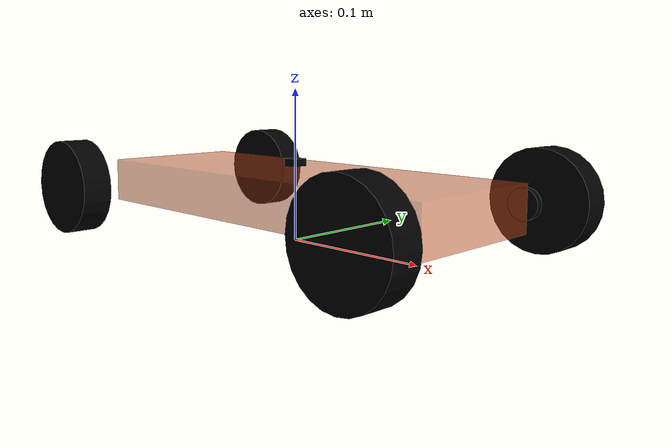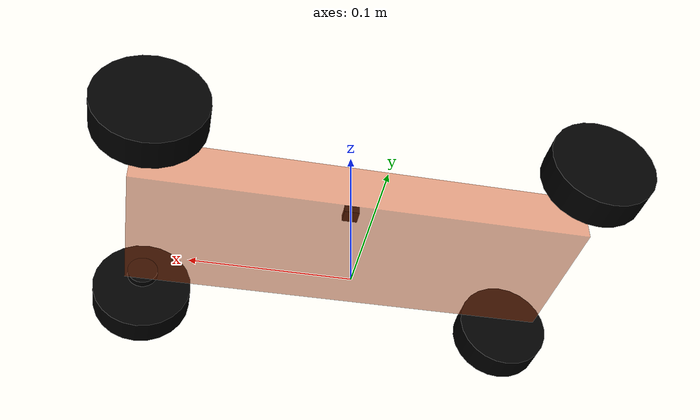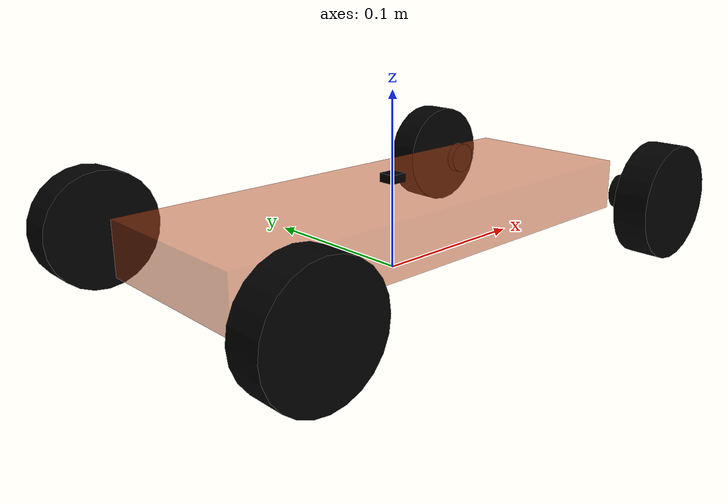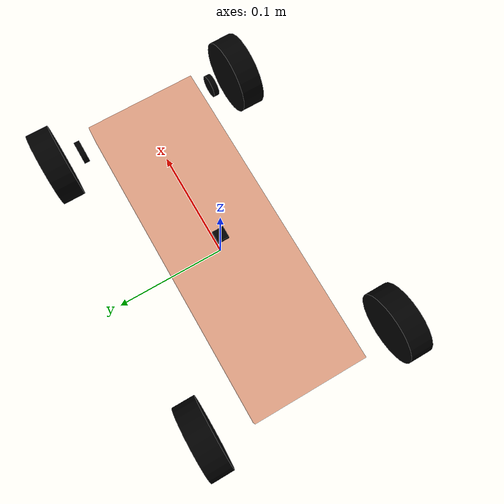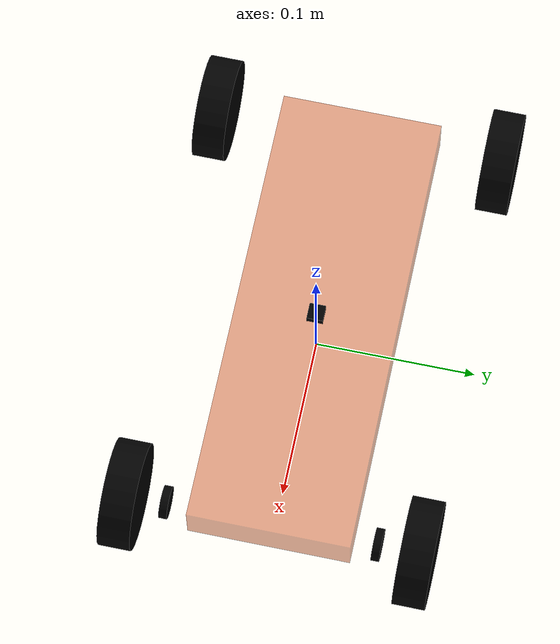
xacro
<?xml version="1.0" encoding="utf-8"?>
<robot name="racebot" xmlns:xacro="http://www.ros.org/wiki/xacro">

  <!-- ==================== Links ==================== -->

  <link name="base_footprint">
  </link>

  <link name="base_link">
    <visual>
      <geometry>
        <box size="0.28 0.1 0.03"/>
      </geometry>
      <origin xyz="0 0 0" rpy="0 0 0"/>
      <material name="yellow">
        <color rgba="0.8 0.3 0.1 0.5"/>
      </material>
    </visual>
    <collision>
      <geometry>
        <box size="0.28 0.1 0.03"/>
      </geometry>
      <origin xyz="0.0 0.0 0.0" rpy="0.0 0.0 0.0"/>
    </collision>
  </link>

  <joint name="base_link2base_footprint" type="fixed">
    <parent link="base_footprint"/>
    <child link="base_link"/>
    <origin xyz="0 0 0.032" rpy="0 0 0"/>
  </joint>

  <link name="base_inertia">
    <inertial>
      <origin xyz="0 0 0"/>
      <mass value="4"/>
      <inertia ixx="0.0264" ixy="0" ixz="0" iyy="0.0294" iyz="0" izz="0.00364"/>
    </inertial>
  </link>

  <joint name="chassis_inertia_joint" type="fixed">
    <origin xyz="0 0 0" rpy="0 0 0"/>
    <parent link="base_link"/>
    <child link="base_inertia"/>
  </joint>

  <!-- ==================== Left Steering + Front Wheel ==================== -->

  <link name="left_steering_hinge">
    <visual>
      <geometry>
        <cylinder radius="0.01" length="0.005"/>
      </geometry>
      <origin xyz="0 0 0" rpy="1.57 0 0"/>
      <material name="black">
        <color rgba="0.0 0.0 0.0 1.0"/>
      </material>
    </visual>
    <collision>
      <geometry>
        <cylinder radius="0.01" length="0.005"/>
      </geometry>
      <origin xyz="0.0 0.0 0.0" rpy="1.57 0.0 0.0"/>
    </collision>
    <inertial>
      <origin xyz="0 0 0"/>
      <mass value="0.5"/>
      <inertia ixx="1.35E-05" ixy="0" ixz="0" iyy="1.35E-05" iyz="0" izz="2.5E-05"/>
    </inertial>
  </link>

  <joint name="left_steering_hinge_joint" type="revolute">
    <parent link="base_link"/>
    <child link="left_steering_hinge"/>
    <origin xyz="0.13 0.065 0"/>
    <axis xyz="0 0 1"/>
    <limit lower="-0.6" upper="0.6" effort="5.0" velocity="1000.0"/>
  </joint>

  <link name="left_front_wheel">
    <visual>
      <geometry>
        <cylinder radius="0.033" length="0.02"/>
      </geometry>
      <origin xyz="0 0 0" rpy="1.57 0 0"/>
      <material name="black">
        <color rgba="0.0 0.0 0.0 1.0"/>
      </material>
    </visual>
    <collision>
      <geometry>
        <cylinder radius="0.032" length="0.02"/>
      </geometry>
      <origin xyz="0.0 0.0 0.0" rpy="1.57 0.0 0.0"/>
    </collision>
    <inertial>
      <origin xyz="0 0 0"/>
      <mass value="2.0"/>
      <inertia ixx="6.64E-04" ixy="0" ixz="0" iyy="6.64E-04" iyz="0" izz="1.02E-03"/>
    </inertial>
  </link>

  <joint name="left_front_wheel_joint" type="continuous">
    <parent link="left_steering_hinge"/>
    <child link="left_front_wheel"/>
    <origin xyz="0 0.025 0"/>
    <axis xyz="0 1 0"/>
    <limit effort="10" velocity="1000"/>
  </joint>

  <!-- ==================== Right Steering + Front Wheel ==================== -->

  <link name="right_steering_hinge">
    <visual>
      <geometry>
        <cylinder radius="0.01" length="0.005"/>
      </geometry>
      <origin xyz="0 0 0" rpy="1.57 0 0"/>
      <material name="black">
        <color rgba="0.0 0.0 0.0 1.0"/>
      </material>
    </visual>
    <collision>
      <geometry>
        <cylinder radius="0.01" length="0.005"/>
      </geometry>
      <origin xyz="0.0 0.0 0.0" rpy="1.57 0.0 0.0"/>
    </collision>
    <inertial>
      <origin xyz="0 0 0"/>
      <mass value="0.5"/>
      <inertia ixx="1.35E-05" ixy="0" ixz="0" iyy="1.35E-05" iyz="0" izz="2.5E-05"/>
    </inertial>
  </link>

  <joint name="right_steering_hinge_joint" type="revolute">
    <parent link="base_link"/>
    <child link="right_steering_hinge"/>
    <origin xyz="0.13 -0.065 0"/>
    <axis xyz="0 0 1"/>
    <limit lower="-0.6" upper="0.6" effort="5.0" velocity="1000.0"/>
  </joint>

  <link name="right_front_wheel">
    <visual>
      <geometry>
        <cylinder radius="0.033" length="0.02"/>
      </geometry>
      <origin xyz="0 0 0" rpy="1.57 0 0"/>
      <material name="black">
        <color rgba="0.0 0.0 0.0 1.0"/>
      </material>
    </visual>
    <collision>
      <geometry>
        <cylinder radius="0.032" length="0.02"/>
      </geometry>
      <origin xyz="0.0 0.0 0.0" rpy="1.57 0.0 0.0"/>
    </collision>
    <inertial>
      <origin xyz="0 0 0"/>
      <mass value="2.0"/>
      <inertia ixx="6.64E-04" ixy="0" ixz="0" iyy="6.64E-04" iyz="0" izz="1.02E-03"/>
    </inertial>
  </link>

  <joint name="right_front_wheel_joint" type="continuous">
    <parent link="right_steering_hinge"/>
    <child link="right_front_wheel"/>
    <origin xyz="0 -0.025 0"/>
    <axis xyz="0 1 0"/>
    <limit effort="10" velocity="1000"/>
  </joint>

  <!-- ==================== Rear Wheels ==================== -->

  <link name="left_rear_wheel">
    <visual>
      <geometry>
        <cylinder radius="0.032" length="0.02"/>
      </geometry>
      <origin xyz="0 0 0" rpy="1.57 0 0"/>
      <material name="black">
        <color rgba="0.0 0.0 0.0 1.0"/>
      </material>
    </visual>
    <collision>
      <geometry>
        <cylinder radius="0.032" length="0.02"/>
      </geometry>
      <origin xyz="0.0 0.0 0.0" rpy="1.57 0.0 0.0"/>
    </collision>
    <inertial>
      <origin xyz="0 0 0"/>
      <mass value="2.0"/>
      <inertia ixx="6.64E-04" ixy="0" ixz="0" iyy="6.64E-04" iyz="0" izz="1.02E-03"/>
    </inertial>
  </link>

  <joint name="left_rear_wheel_joint" type="continuous">
    <parent link="base_link"/>
    <child link="left_rear_wheel"/>
    <origin xyz="-0.13 0.09 0"/>
    <axis xyz="0 1 0"/>
    <limit effort="10" velocity="1000"/>
  </joint>

  <link name="right_rear_wheel">
    <visual>
      <geometry>
        <cylinder radius="0.032" length="0.02"/>
      </geometry>
      <origin xyz="0 0 0" rpy="1.57 0 0"/>
      <material name="black">
        <color rgba="0.0 0.0 0.0 1.0"/>
      </material>
    </visual>
    <collision>
      <geometry>
        <cylinder radius="0.032" length="0.02"/>
      </geometry>
      <origin xyz="0.0 0.0 0.0" rpy="1.57 0.0 0.0"/>
    </collision>
    <inertial>
      <origin xyz="0 0 0"/>
      <mass value="2.0"/>
      <inertia ixx="6.64E-04" ixy="0" ixz="0" iyy="6.64E-04" iyz="0" izz="1.02E-03"/>
    </inertial>
  </link>

  <joint name="right_rear_wheel_joint" type="continuous">
    <parent link="base_link"/>
    <child link="right_rear_wheel"/>
    <origin xyz="-0.13 -0.09 0"/>
    <axis xyz="0 1 0"/>
    <limit effort="10" velocity="1000"/>
  </joint>

  <!-- ==================== IMU ==================== -->

  <link name="imu">
    <visual>
      <geometry>
        <box size="0.01 0.01 0.005"/>
      </geometry>
      <origin xyz="0 0 0" rpy="0 0 0"/>
      <material name="black">
        <color rgba="0.0 0.0 0.0 1.0"/>
      </material>
    </visual>
    <collision>
      <geometry>
        <box size="0.01 0.01 0.005"/>
      </geometry>
      <origin xyz="0.0 0.0 0.0" rpy="0.0 0.0 0.0"/>
    </collision>
    <inertial>
      <origin xyz="0 0 0"/>
      <mass value="0.05"/>
      <inertia ixx="6.64E-04" ixy="0" ixz="0" iyy="6.64E-04" iyz="0" izz="1.02E-03"/>
    </inertial>
  </link>

  <joint name="imu_joint" type="fixed">
    <parent link="base_link"/>
    <child link="imu"/>
    <origin xyz="0 0 0.02"/>
    <axis xyz="0 0 1"/>
  </joint>

  <!-- ==================== Gazebo Surface Properties ==================== -->

  <gazebo reference="base_link">
    <mu1 value="0.0"/>
    <mu2 value="0.0"/>
    <kp value="10000000.0"/>
    <kd value="1.0"/>
    <material>Gazebo/Red</material>
  </gazebo>

  <gazebo reference="left_rear_wheel">
    <mu1 value="2.0"/>
    <mu2 value="2.0"/>
    <kp value="10000000.0"/>
    <kd value="1.0"/>
    <fdir1 value="1 0 0"/>
    <material>Gazebo/Black</material>
  </gazebo>

  <gazebo reference="right_rear_wheel">
    <mu1 value="2.0"/>
    <mu2 value="2.0"/>
    <kp value="10000000.0"/>
    <kd value="1.0"/>
    <fdir1 value="1 0 0"/>
    <material>Gazebo/Black</material>
  </gazebo>

  <gazebo reference="left_front_wheel">
    <mu1 value="2.0"/>
    <mu2 value="2.0"/>
    <kp value="10000000.0"/>
    <kd value="1.0"/>
    <fdir1 value="0 0 1"/>
    <material>Gazebo/Black</material>
  </gazebo>

  <gazebo reference="right_front_wheel">
    <mu1 value="2.0"/>
    <mu2 value="2.0"/>
    <kp value="10000000.0"/>
    <kd value="1.0"/>
    <fdir1 value="0 0 1"/>
    <material>Gazebo/Black</material>
  </gazebo>

  <gazebo reference="imu">
    <material>Gazebo/Orange</material>
    <gravity>true</gravity>
    <sensor name="imu_sensor" type="imu">
      <always_on>true</always_on>
      <update_rate>100</update_rate>
      <visualize>true</visualize>
      <topic>__default_topic__</topic>
      <plugin filename="libgazebo_ros_imu_sensor.so" name="imu_plugin">
        <topicName>imu</topicName>
        <bodyName>imu</bodyName>
        <updateRateHZ>100.0</updateRateHZ>
        <gaussianNoise>0.0</gaussianNoise>
        <xyzOffset>0 0 0</xyzOffset>
        <rpyOffset>0 0 0</rpyOffset>
        <frameName>imu</frameName>
      </plugin>
      <pose>0 0 0 0 0 0</pose>
    </sensor>
  </gazebo>

  <!-- ==================== ros2_control ==================== -->

  <gazebo>
    <plugin name="gazebo_ros2_control" filename="libgazebo_ros2_control.so">
      <parameters>$(find racebot_description)/config/ros2_control.yaml</parameters>
    </plugin>
  </gazebo>

  <ros2_control name="GazeboSystem" type="system">
    <hardware>
      <plugin>gazebo_ros2_control/GazeboSystem</plugin>
    </hardware>

    <joint name="left_rear_wheel_joint">
      <command_interface name="velocity"/>
      <state_interface name="position"/>
      <state_interface name="velocity"/>
      <state_interface name="effort"/>
    </joint>
    <joint name="right_rear_wheel_joint">
      <command_interface name="velocity"/>
      <state_interface name="position"/>
      <state_interface name="velocity"/>
      <state_interface name="effort"/>
    </joint>
    <joint name="left_front_wheel_joint">
      <command_interface name="velocity"/>
      <state_interface name="position"/>
      <state_interface name="velocity"/>
      <state_interface name="effort"/>
    </joint>
    <joint name="right_front_wheel_joint">
      <command_interface name="velocity"/>
      <state_interface name="position"/>
      <state_interface name="velocity"/>
      <state_interface name="effort"/>
    </joint>

    <joint name="left_steering_hinge_joint">
      <command_interface name="position"/>
      <state_interface name="position"/>
      <state_interface name="velocity"/>
      <state_interface name="effort"/>
    </joint>
    <joint name="right_steering_hinge_joint">
      <command_interface name="position"/>
      <state_interface name="position"/>
      <state_interface name="velocity"/>
      <state_interface name="effort"/>
    </joint>
  </ros2_control>

</robot>
